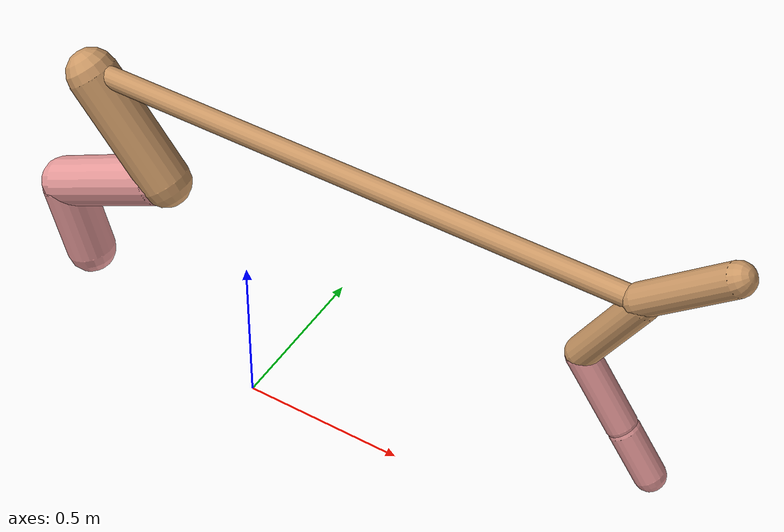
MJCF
<mujoco model="cheetah">
  <compiler angle="radian" coordinate="local" inertiafromgeom="true" settotalmass="14" />
  <default>
    <joint armature=".1" damping=".01" limited="true" solimplimit="0 .8 .03" solreflimit=".02 1" stiffness="8" />
    <geom conaffinity="0" condim="3" contype="1" friction="0.8 .1 .1" rgba="0.8 0.6 .4 1" solimp="0.0 0.8 0.01" solref="0.02 1" />
    <motor ctrllimited="true" ctrlrange="-1 1" />
  </default>
  <size nstack="300000" nuser_geom="1" />
  <option gravity="0 0 -9.81" timestep="0.01" />
  <worldbody>
    <body name="torso" pos="0.0 0.0 1.0173716708186342">
      <joint armature="0" axis="1 0 0" damping="0" limited="false" name="ignorex" pos="0 0 0" stiffness="0" type="slide" />
      <joint armature="0" axis="0 0 1" damping="0" limited="false" name="ignorez" pos="0 0 0" stiffness="0" type="slide" />
      <joint armature="0" axis="0 1 0" damping="0" limited="false" name="ignorey" pos="0 0 0" stiffness="0" type="hinge" />
      <geom fromto="-0.5 0.0 0.0 1.188415813984794 0.0 0.0" name="torso" size="0.03130626954774914" type="capsule" />
      <geom axisangle="0 1 0 .87" name="head" pos="1.2884158139847939 0.0 0.1" size="0.04551725820552675 0.15" type="capsule" />

      <body name="bthigh" pos="-.5 0 0">
        <joint axis="0 1 0" damping="6" name="bthigh" pos="0 0 0" range="-.52 1.05" stiffness="240" type="hinge" />
        <geom axisangle="0 1 0 -3.8" name="bthigh" pos="0.12377814730390704 0.0 -0.16091159149507916" size="0.07417924864492195 0.1839990612446627" type="capsule" />
        <body name="bshin" pos="0.20755629460781408 0.0 -0.3118231829901583">
          <joint axis="0 1 0" damping="4.5" name="bshin" pos="0 0 0" range="-.785 .785" stiffness="180" type="hinge" />
          <geom axisangle="0 1 0 -2.03" name="bshin" pos="-0.17608464220761794 0.0 -0.08804232110380897" rgba="0.9 0.6 0.6 1" size="0.07417924864492195 0.19034385645999588" type="capsule" />
          <body name="bfoot" pos="-0.3521692844152359 0.0 -0.17608464220761794">
            <joint axis="0 1 0" damping="3" name="bfoot" pos="0 0 0" range="-.4 .785" stiffness="120" type="hinge" />
            <geom axisangle="0 1 0 -.27" name="bfoot" pos="0.03747010986963473 0.0 -0.12115335524515229" rgba="0.9 0.6 0.6 1" size="0.07417924864492195 0.11928215004826409" type="capsule" />
            <inertial mass="10" />
          </body>
        </body>
      </body>
      <body name="fthigh" pos="1.188415813984794 0.0 0.0">
        <joint axis="0 1 0" damping="4.5" name="fthigh" pos="0 0 0" range="-1.5 0.8" stiffness="180" type="hinge" />
        <geom axisangle="0 1 0 .52" name="fthigh" pos="-0.07662201808669306 0.0 -0.1313520310057595" size="0.044704198366307436 0.14614228790950096" type="capsule" />
        <body name="fshin" pos="-0.1532440361733861 0.0 -0.262704062011519">
          <joint axis="0 1 0" damping="3" name="fshin" pos="0 0 0" range="-1.2 1.1" stiffness="120" type="hinge" />
          <geom axisangle="0 1 0 -.6" name="fshin" pos="0.0711326064304742 0.0 -0.09849130121142581" rgba="0.9 0.6 0.6 1" size="0.044704198366307436 0.11647430464967745" type="capsule" />
          <body name="ffoot" pos="0.1422652128609484 0.0 -0.19698260242285162">
            <joint axis="0 1 0" damping="1.5" name="ffoot" pos="0 0 0" range="-3.1 -0.3" stiffness="60" type="hinge" />
            <geom axisangle="0 1 0 -.6" name="ffoot" pos="0.0487404168180475 0.0 -0.07581842616140723" rgba="0.9 0.6 0.6 1" size="0.044704198366307436 0.07691699363657946" type="capsule" />
            <inertial mass="10" />
          </body>
        </body>
      </body>
    </body>
  </worldbody>
  <actuator>
    <motor gear="120" joint="bthigh" name="bthigh" />
    <motor gear="90" joint="bshin" name="bshin" />
    <motor gear="60" joint="bfoot" name="bfoot" />
    <motor gear="120" joint="fthigh" name="fthigh" />
    <motor gear="60" joint="fshin" name="fshin" />
    <motor gear="30" joint="ffoot" name="ffoot" />
  </actuator>
</mujoco>
